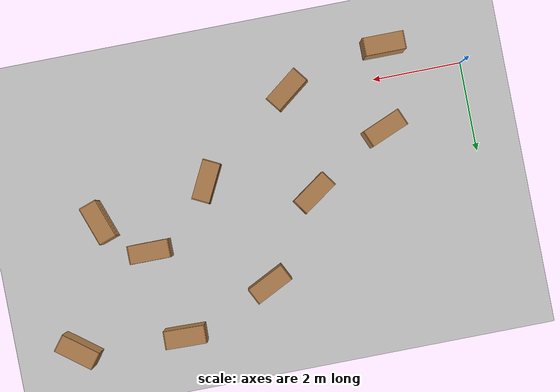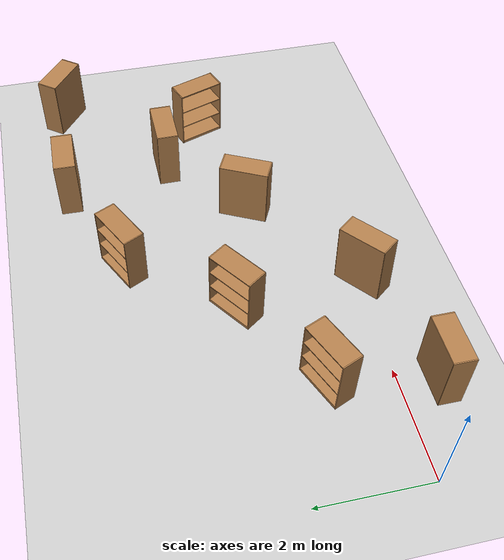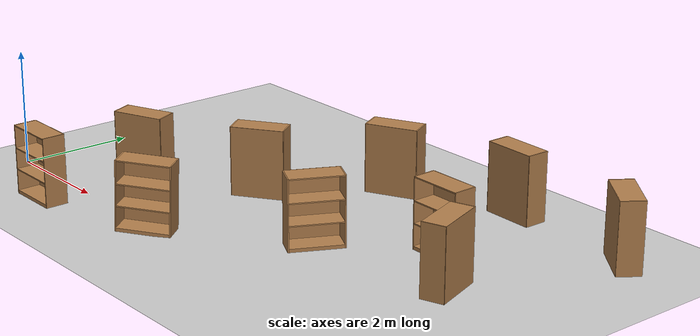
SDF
<sdf version="1.6">
 <world name="default">
  <model name="ground_plane">
   <static>1</static>
   <link name="link">
    <collision name="collision">
     <geometry><plane><normal>0 0 1</normal><size>100 100</size></plane></geometry>
     <surface><friction><ode><mu>100</mu><mu2>50</mu2></ode></friction></surface>
    </collision>
    <visual name="visual">
     <cast_shadows>0</cast_shadows>
     <geometry><plane><normal>0 0 1</normal><size>100 100</size></plane></geometry>
     <material>
      <script><uri>file://media/materials/scripts/gazebo.material</uri><name>Gazebo/Grey</name></script>
     </material>
    </visual>
   </link>
  </model>
  <light name="sun" type="directional">
   <pose>0 0 10 0 -0 0</pose>
   <diffuse>0.8 0.8 0.8 1</diffuse>
   <specular>0.1 0.1 0.1 1</specular>
   <attenuation>
    <range>1000</range>
    <constant>0.9</constant>
    <linear>0.01</linear>
    <quadratic>0.001</quadratic>
   </attenuation>
   <direction>-0.5 0.5 -1</direction>
  </light>
  <gravity>0 0 -9.8</gravity>
  <magnetic_field>6e-06 2.3e-05 -4.2e-05</magnetic_field>
  <atmosphere type="adiabatic"/>
  <physics name="default_physics" default="0" type="ode">
   <max_step_size>0.001</max_step_size>
   <real_time_factor>1</real_time_factor>
   <real_time_update_rate>1000</real_time_update_rate>
  </physics>
  <scene><ambient>0.4 0.4 0.4 1</ambient><background>0.7 0.7 0.7 1</background><shadows>1</shadows></scene>
  <spherical_coordinates>
   <surface_model>EARTH_WGS84</surface_model>
   <latitude_deg>0</latitude_deg>
   <longitude_deg>0</longitude_deg>
   <elevation>0</elevation>
   <heading_deg>0</heading_deg>
  </spherical_coordinates>
  <model name="bookshelf_0">
   <static>1</static>
   <link name="link">
    <inertial><mass>1</mass></inertial>
    <collision name="back">
     <pose>0 0.005 0.6 0 -0 0</pose>
     <geometry><box><size>0.9 0.01 1.2</size></box></geometry>
    </collision>
    <visual name="visual1">
     <pose>0 0.005 0.6 0 -0 0</pose>
     <geometry><box><size>0.9 0.01 1.2</size></box></geometry>
     <material>
      <script><uri>file://media/materials/scripts/gazebo.material</uri><name>Gazebo/Wood</name></script>
     </material>
    </visual>
    <collision name="left_side">
     <pose>0.45 -0.195 0.6 0 -0 0</pose>
     <geometry><box><size>0.02 0.4 1.2</size></box></geometry>
    </collision>
    <visual name="visual2">
     <pose>0.45 -0.195 0.6 0 -0 0</pose>
     <geometry><box><size>0.02 0.4 1.2</size></box></geometry>
     <material>
      <script><uri>file://media/materials/scripts/gazebo.material</uri><name>Gazebo/Wood</name></script>
     </material>
    </visual>
    <collision name="right_side">
     <pose>-0.45 -0.195 0.6 0 -0 0</pose>
     <geometry><box><size>0.02 0.4 1.2</size></box></geometry>
    </collision>
    <visual name="visual3">
     <pose>-0.45 -0.195 0.6 0 -0 0</pose>
     <geometry><box><size>0.02 0.4 1.2</size></box></geometry>
     <material>
      <script><uri>file://media/materials/scripts/gazebo.material</uri><name>Gazebo/Wood</name></script>
     </material>
    </visual>
    <collision name="bottom">
     <pose>0 -0.195 0.03 0 -0 0</pose>
     <geometry><box><size>0.88 0.4 0.06</size></box></geometry>
    </collision>
    <visual name="visual4">
     <pose>0 -0.195 0.03 0 -0 0</pose>
     <geometry><box><size>0.88 0.4 0.06</size></box></geometry>
     <material>
      <script><uri>file://media/materials/scripts/gazebo.material</uri><name>Gazebo/Wood</name></script>
     </material>
    </visual>
    <collision name="top">
     <pose>0 -0.195 1.19 0 -0 0</pose>
     <geometry><box><size>0.88 0.4 0.02</size></box></geometry>
    </collision>
    <visual name="visual5">
     <pose>0 -0.195 1.19 0 -0 0</pose>
     <geometry><box><size>0.88 0.4 0.02</size></box></geometry>
     <material>
      <script><uri>file://media/materials/scripts/gazebo.material</uri><name>Gazebo/Wood</name></script>
     </material>
    </visual>
    <collision name="low_shelf">
     <pose>0 -0.195 0.43 0 -0 0</pose>
     <geometry><box><size>0.88 0.4 0.02</size></box></geometry>
    </collision>
    <visual name="visual6">
     <pose>0 -0.195 0.43 0 -0 0</pose>
     <geometry><box><size>0.88 0.4 0.02</size></box></geometry>
     <material>
      <script><uri>file://media/materials/scripts/gazebo.material</uri><name>Gazebo/Wood</name></script>
     </material>
    </visual>
    <collision name="high_shelf">
     <pose>0 -0.195 0.8 0 -0 0</pose>
     <geometry><box><size>0.88 0.4 0.02</size></box></geometry>
    </collision>
    <visual name="visual7">
     <pose>0 -0.195 0.8 0 -0 0</pose>
     <geometry><box><size>0.88 0.4 0.02</size></box></geometry>
     <material>
      <script><uri>file://media/materials/scripts/gazebo.material</uri><name>Gazebo/Wood</name></script>
     </material>
    </visual>
   </link>
   <pose>1.67672 -0.482988 0 0 -0 0</pose>
  </model>
  <model name="bookshelf">
   <static>1</static>
   <link name="link">
    <inertial><mass>1</mass></inertial>
    <collision name="back">
     <pose>0 0.005 0.6 0 -0 0</pose>
     <geometry><box><size>0.9 0.01 1.2</size></box></geometry>
    </collision>
    <visual name="visual1">
     <pose>0 0.005 0.6 0 -0 0</pose>
     <geometry><box><size>0.9 0.01 1.2</size></box></geometry>
     <material>
      <script><uri>file://media/materials/scripts/gazebo.material</uri><name>Gazebo/Wood</name></script>
     </material>
    </visual>
    <collision name="left_side">
     <pose>0.45 -0.195 0.6 0 -0 0</pose>
     <geometry><box><size>0.02 0.4 1.2</size></box></geometry>
    </collision>
    <visual name="visual2">
     <pose>0.45 -0.195 0.6 0 -0 0</pose>
     <geometry><box><size>0.02 0.4 1.2</size></box></geometry>
     <material>
      <script><uri>file://media/materials/scripts/gazebo.material</uri><name>Gazebo/Wood</name></script>
     </material>
    </visual>
    <collision name="right_side">
     <pose>-0.45 -0.195 0.6 0 -0 0</pose>
     <geometry><box><size>0.02 0.4 1.2</size></box></geometry>
    </collision>
    <visual name="visual3">
     <pose>-0.45 -0.195 0.6 0 -0 0</pose>
     <geometry><box><size>0.02 0.4 1.2</size></box></geometry>
     <material>
      <script><uri>file://media/materials/scripts/gazebo.material</uri><name>Gazebo/Wood</name></script>
     </material>
    </visual>
    <collision name="bottom">
     <pose>0 -0.195 0.03 0 -0 0</pose>
     <geometry><box><size>0.88 0.4 0.06</size></box></geometry>
    </collision>
    <visual name="visual4">
     <pose>0 -0.195 0.03 0 -0 0</pose>
     <geometry><box><size>0.88 0.4 0.06</size></box></geometry>
     <material>
      <script><uri>file://media/materials/scripts/gazebo.material</uri><name>Gazebo/Wood</name></script>
     </material>
    </visual>
    <collision name="top">
     <pose>0 -0.195 1.19 0 -0 0</pose>
     <geometry><box><size>0.88 0.4 0.02</size></box></geometry>
    </collision>
    <visual name="visual5">
     <pose>0 -0.195 1.19 0 -0 0</pose>
     <geometry><box><size>0.88 0.4 0.02</size></box></geometry>
     <material>
      <script><uri>file://media/materials/scripts/gazebo.material</uri><name>Gazebo/Wood</name></script>
     </material>
    </visual>
    <collision name="low_shelf">
     <pose>0 -0.195 0.43 0 -0 0</pose>
     <geometry><box><size>0.88 0.4 0.02</size></box></geometry>
    </collision>
    <visual name="visual6">
     <pose>0 -0.195 0.43 0 -0 0</pose>
     <geometry><box><size>0.88 0.4 0.02</size></box></geometry>
     <material>
      <script><uri>file://media/materials/scripts/gazebo.material</uri><name>Gazebo/Wood</name></script>
     </material>
    </visual>
    <collision name="high_shelf">
     <pose>0 -0.195 0.8 0 -0 0</pose>
     <geometry><box><size>0.88 0.4 0.02</size></box></geometry>
    </collision>
    <visual name="visual7">
     <pose>0 -0.195 0.8 0 -0 0</pose>
     <geometry><box><size>0.88 0.4 0.02</size></box></geometry>
     <material>
      <script><uri>file://media/materials/scripts/gazebo.material</uri><name>Gazebo/Wood</name></script>
     </material>
    </visual>
   </link>
   <pose>2.07681 0.966613 0 0 0 -2.74623</pose>
  </model>
  <model name="bookshelf_1">
   <static>1</static>
   <link name="link">
    <inertial><mass>1</mass></inertial>
    <collision name="back">
     <pose>0 0.005 0.6 0 -0 0</pose>
     <geometry><box><size>0.9 0.01 1.2</size></box></geometry>
    </collision>
    <visual name="visual1">
     <pose>0 0.005 0.6 0 -0 0</pose>
     <geometry><box><size>0.9 0.01 1.2</size></box></geometry>
     <material>
      <script><uri>file://media/materials/scripts/gazebo.material</uri><name>Gazebo/Wood</name></script>
     </material>
    </visual>
    <collision name="left_side">
     <pose>0.45 -0.195 0.6 0 -0 0</pose>
     <geometry><box><size>0.02 0.4 1.2</size></box></geometry>
    </collision>
    <visual name="visual2">
     <pose>0.45 -0.195 0.6 0 -0 0</pose>
     <geometry><box><size>0.02 0.4 1.2</size></box></geometry>
     <material>
      <script><uri>file://media/materials/scripts/gazebo.material</uri><name>Gazebo/Wood</name></script>
     </material>
    </visual>
    <collision name="right_side">
     <pose>-0.45 -0.195 0.6 0 -0 0</pose>
     <geometry><box><size>0.02 0.4 1.2</size></box></geometry>
    </collision>
    <visual name="visual3">
     <pose>-0.45 -0.195 0.6 0 -0 0</pose>
     <geometry><box><size>0.02 0.4 1.2</size></box></geometry>
     <material>
      <script><uri>file://media/materials/scripts/gazebo.material</uri><name>Gazebo/Wood</name></script>
     </material>
    </visual>
    <collision name="bottom">
     <pose>0 -0.195 0.03 0 -0 0</pose>
     <geometry><box><size>0.88 0.4 0.06</size></box></geometry>
    </collision>
    <visual name="visual4">
     <pose>0 -0.195 0.03 0 -0 0</pose>
     <geometry><box><size>0.88 0.4 0.06</size></box></geometry>
     <material>
      <script><uri>file://media/materials/scripts/gazebo.material</uri><name>Gazebo/Wood</name></script>
     </material>
    </visual>
    <collision name="top">
     <pose>0 -0.195 1.19 0 -0 0</pose>
     <geometry><box><size>0.88 0.4 0.02</size></box></geometry>
    </collision>
    <visual name="visual5">
     <pose>0 -0.195 1.19 0 -0 0</pose>
     <geometry><box><size>0.88 0.4 0.02</size></box></geometry>
     <material>
      <script><uri>file://media/materials/scripts/gazebo.material</uri><name>Gazebo/Wood</name></script>
     </material>
    </visual>
    <collision name="low_shelf">
     <pose>0 -0.195 0.43 0 -0 0</pose>
     <geometry><box><size>0.88 0.4 0.02</size></box></geometry>
    </collision>
    <visual name="visual6">
     <pose>0 -0.195 0.43 0 -0 0</pose>
     <geometry><box><size>0.88 0.4 0.02</size></box></geometry>
     <material>
      <script><uri>file://media/materials/scripts/gazebo.material</uri><name>Gazebo/Wood</name></script>
     </material>
    </visual>
    <collision name="high_shelf">
     <pose>0 -0.195 0.8 0 -0 0</pose>
     <geometry><box><size>0.88 0.4 0.02</size></box></geometry>
    </collision>
    <visual name="visual7">
     <pose>0 -0.195 0.8 0 -0 0</pose>
     <geometry><box><size>0.88 0.4 0.02</size></box></geometry>
     <material>
      <script><uri>file://media/materials/scripts/gazebo.material</uri><name>Gazebo/Wood</name></script>
     </material>
    </visual>
   </link>
   <pose>3.80558 0.034787 0 0.008188 0.042642 0.653444</pose>
  </model>
  <model name="bookshelf_2">
   <static>1</static>
   <link name="link">
    <inertial><mass>1</mass></inertial>
    <collision name="back">
     <pose>0 0.005 0.6 0 -0 0</pose>
     <geometry><box><size>0.9 0.01 1.2</size></box></geometry>
    </collision>
    <visual name="visual1">
     <pose>0 0.005 0.6 0 -0 0</pose>
     <geometry><box><size>0.9 0.01 1.2</size></box></geometry>
     <material>
      <script><uri>file://media/materials/scripts/gazebo.material</uri><name>Gazebo/Wood</name></script>
     </material>
    </visual>
    <collision name="left_side">
     <pose>0.45 -0.195 0.6 0 -0 0</pose>
     <geometry><box><size>0.02 0.4 1.2</size></box></geometry>
    </collision>
    <visual name="visual2">
     <pose>0.45 -0.195 0.6 0 -0 0</pose>
     <geometry><box><size>0.02 0.4 1.2</size></box></geometry>
     <material>
      <script><uri>file://media/materials/scripts/gazebo.material</uri><name>Gazebo/Wood</name></script>
     </material>
    </visual>
    <collision name="right_side">
     <pose>-0.45 -0.195 0.6 0 -0 0</pose>
     <geometry><box><size>0.02 0.4 1.2</size></box></geometry>
    </collision>
    <visual name="visual3">
     <pose>-0.45 -0.195 0.6 0 -0 0</pose>
     <geometry><box><size>0.02 0.4 1.2</size></box></geometry>
     <material>
      <script><uri>file://media/materials/scripts/gazebo.material</uri><name>Gazebo/Wood</name></script>
     </material>
    </visual>
    <collision name="bottom">
     <pose>0 -0.195 0.03 0 -0 0</pose>
     <geometry><box><size>0.88 0.4 0.06</size></box></geometry>
    </collision>
    <visual name="visual4">
     <pose>0 -0.195 0.03 0 -0 0</pose>
     <geometry><box><size>0.88 0.4 0.06</size></box></geometry>
     <material>
      <script><uri>file://media/materials/scripts/gazebo.material</uri><name>Gazebo/Wood</name></script>
     </material>
    </visual>
    <collision name="top">
     <pose>0 -0.195 1.19 0 -0 0</pose>
     <geometry><box><size>0.88 0.4 0.02</size></box></geometry>
    </collision>
    <visual name="visual5">
     <pose>0 -0.195 1.19 0 -0 0</pose>
     <geometry><box><size>0.88 0.4 0.02</size></box></geometry>
     <material>
      <script><uri>file://media/materials/scripts/gazebo.material</uri><name>Gazebo/Wood</name></script>
     </material>
    </visual>
    <collision name="low_shelf">
     <pose>0 -0.195 0.43 0 -0 0</pose>
     <geometry><box><size>0.88 0.4 0.02</size></box></geometry>
    </collision>
    <visual name="visual6">
     <pose>0 -0.195 0.43 0 -0 0</pose>
     <geometry><box><size>0.88 0.4 0.02</size></box></geometry>
     <material>
      <script><uri>file://media/materials/scripts/gazebo.material</uri><name>Gazebo/Wood</name></script>
     </material>
    </visual>
    <collision name="high_shelf">
     <pose>0 -0.195 0.8 0 -0 0</pose>
     <geometry><box><size>0.88 0.4 0.02</size></box></geometry>
    </collision>
    <visual name="visual7">
     <pose>0 -0.195 0.8 0 -0 0</pose>
     <geometry><box><size>0.88 0.4 0.02</size></box></geometry>
     <material>
      <script><uri>file://media/materials/scripts/gazebo.material</uri><name>Gazebo/Wood</name></script>
     </material>
    </visual>
   </link>
   <pose>3.91006 2.08465 0 0 0 -2.53344</pose>
  </model>
  <model name="bookshelf_3">
   <static>1</static>
   <link name="link">
    <inertial><mass>1</mass></inertial>
    <collision name="back">
     <pose>0 0.005 0.6 0 -0 0</pose>
     <geometry><box><size>0.9 0.01 1.2</size></box></geometry>
    </collision>
    <visual name="visual1">
     <pose>0 0.005 0.6 0 -0 0</pose>
     <geometry><box><size>0.9 0.01 1.2</size></box></geometry>
     <material>
      <script><uri>file://media/materials/scripts/gazebo.material</uri><name>Gazebo/Wood</name></script>
     </material>
    </visual>
    <collision name="left_side">
     <pose>0.45 -0.195 0.6 0 -0 0</pose>
     <geometry><box><size>0.02 0.4 1.2</size></box></geometry>
    </collision>
    <visual name="visual2">
     <pose>0.45 -0.195 0.6 0 -0 0</pose>
     <geometry><box><size>0.02 0.4 1.2</size></box></geometry>
     <material>
      <script><uri>file://media/materials/scripts/gazebo.material</uri><name>Gazebo/Wood</name></script>
     </material>
    </visual>
    <collision name="right_side">
     <pose>-0.45 -0.195 0.6 0 -0 0</pose>
     <geometry><box><size>0.02 0.4 1.2</size></box></geometry>
    </collision>
    <visual name="visual3">
     <pose>-0.45 -0.195 0.6 0 -0 0</pose>
     <geometry><box><size>0.02 0.4 1.2</size></box></geometry>
     <material>
      <script><uri>file://media/materials/scripts/gazebo.material</uri><name>Gazebo/Wood</name></script>
     </material>
    </visual>
    <collision name="bottom">
     <pose>0 -0.195 0.03 0 -0 0</pose>
     <geometry><box><size>0.88 0.4 0.06</size></box></geometry>
    </collision>
    <visual name="visual4">
     <pose>0 -0.195 0.03 0 -0 0</pose>
     <geometry><box><size>0.88 0.4 0.06</size></box></geometry>
     <material>
      <script><uri>file://media/materials/scripts/gazebo.material</uri><name>Gazebo/Wood</name></script>
     </material>
    </visual>
    <collision name="top">
     <pose>0 -0.195 1.19 0 -0 0</pose>
     <geometry><box><size>0.88 0.4 0.02</size></box></geometry>
    </collision>
    <visual name="visual5">
     <pose>0 -0.195 1.19 0 -0 0</pose>
     <geometry><box><size>0.88 0.4 0.02</size></box></geometry>
     <material>
      <script><uri>file://media/materials/scripts/gazebo.material</uri><name>Gazebo/Wood</name></script>
     </material>
    </visual>
    <collision name="low_shelf">
     <pose>0 -0.195 0.43 0 -0 0</pose>
     <geometry><box><size>0.88 0.4 0.02</size></box></geometry>
    </collision>
    <visual name="visual6">
     <pose>0 -0.195 0.43 0 -0 0</pose>
     <geometry><box><size>0.88 0.4 0.02</size></box></geometry>
     <material>
      <script><uri>file://media/materials/scripts/gazebo.material</uri><name>Gazebo/Wood</name></script>
     </material>
    </visual>
    <collision name="high_shelf">
     <pose>0 -0.195 0.8 0 -0 0</pose>
     <geometry><box><size>0.88 0.4 0.02</size></box></geometry>
    </collision>
    <visual name="visual7">
     <pose>0 -0.195 0.8 0 -0 0</pose>
     <geometry><box><size>0.88 0.4 0.02</size></box></geometry>
     <material>
      <script><uri>file://media/materials/scripts/gazebo.material</uri><name>Gazebo/Wood</name></script>
     </material>
    </visual>
   </link>
   <pose>5.91137 1.62871 0 0 -0 1.10189</pose>
  </model>
  <model name="bookshelf_4">
   <static>1</static>
   <link name="link">
    <inertial><mass>1</mass></inertial>
    <collision name="back">
     <pose>0 0.005 0.6 0 -0 0</pose>
     <geometry><box><size>0.9 0.01 1.2</size></box></geometry>
    </collision>
    <visual name="visual1">
     <pose>0 0.005 0.6 0 -0 0</pose>
     <geometry><box><size>0.9 0.01 1.2</size></box></geometry>
     <material>
      <script><uri>file://media/materials/scripts/gazebo.material</uri><name>Gazebo/Wood</name></script>
     </material>
    </visual>
    <collision name="left_side">
     <pose>0.45 -0.195 0.6 0 -0 0</pose>
     <geometry><box><size>0.02 0.4 1.2</size></box></geometry>
    </collision>
    <visual name="visual2">
     <pose>0.45 -0.195 0.6 0 -0 0</pose>
     <geometry><box><size>0.02 0.4 1.2</size></box></geometry>
     <material>
      <script><uri>file://media/materials/scripts/gazebo.material</uri><name>Gazebo/Wood</name></script>
     </material>
    </visual>
    <collision name="right_side">
     <pose>-0.45 -0.195 0.6 0 -0 0</pose>
     <geometry><box><size>0.02 0.4 1.2</size></box></geometry>
    </collision>
    <visual name="visual3">
     <pose>-0.45 -0.195 0.6 0 -0 0</pose>
     <geometry><box><size>0.02 0.4 1.2</size></box></geometry>
     <material>
      <script><uri>file://media/materials/scripts/gazebo.material</uri><name>Gazebo/Wood</name></script>
     </material>
    </visual>
    <collision name="bottom">
     <pose>0 -0.195 0.03 0 -0 0</pose>
     <geometry><box><size>0.88 0.4 0.06</size></box></geometry>
    </collision>
    <visual name="visual4">
     <pose>0 -0.195 0.03 0 -0 0</pose>
     <geometry><box><size>0.88 0.4 0.06</size></box></geometry>
     <material>
      <script><uri>file://media/materials/scripts/gazebo.material</uri><name>Gazebo/Wood</name></script>
     </material>
    </visual>
    <collision name="top">
     <pose>0 -0.195 1.19 0 -0 0</pose>
     <geometry><box><size>0.88 0.4 0.02</size></box></geometry>
    </collision>
    <visual name="visual5">
     <pose>0 -0.195 1.19 0 -0 0</pose>
     <geometry><box><size>0.88 0.4 0.02</size></box></geometry>
     <material>
      <script><uri>file://media/materials/scripts/gazebo.material</uri><name>Gazebo/Wood</name></script>
     </material>
    </visual>
    <collision name="low_shelf">
     <pose>0 -0.195 0.43 0 -0 0</pose>
     <geometry><box><size>0.88 0.4 0.02</size></box></geometry>
    </collision>
    <visual name="visual6">
     <pose>0 -0.195 0.43 0 -0 0</pose>
     <geometry><box><size>0.88 0.4 0.02</size></box></geometry>
     <material>
      <script><uri>file://media/materials/scripts/gazebo.material</uri><name>Gazebo/Wood</name></script>
     </material>
    </visual>
    <collision name="high_shelf">
     <pose>0 -0.195 0.8 0 -0 0</pose>
     <geometry><box><size>0.88 0.4 0.02</size></box></geometry>
    </collision>
    <visual name="visual7">
     <pose>0 -0.195 0.8 0 -0 0</pose>
     <geometry><box><size>0.88 0.4 0.02</size></box></geometry>
     <material>
      <script><uri>file://media/materials/scripts/gazebo.material</uri><name>Gazebo/Wood</name></script>
     </material>
    </visual>
   </link>
   <pose>5.22288 3.85566 0 0 0 -2.67903</pose>
  </model>
  <model name="bookshelf_5">
   <static>1</static>
   <link name="link">
    <inertial><mass>1</mass></inertial>
    <collision name="back">
     <pose>0 0.005 0.6 0 -0 0</pose>
     <geometry><box><size>0.9 0.01 1.2</size></box></geometry>
    </collision>
    <visual name="visual1">
     <pose>0 0.005 0.6 0 -0 0</pose>
     <geometry><box><size>0.9 0.01 1.2</size></box></geometry>
     <material>
      <script><uri>file://media/materials/scripts/gazebo.material</uri><name>Gazebo/Wood</name></script>
     </material>
    </visual>
    <collision name="left_side">
     <pose>0.45 -0.195 0.6 0 -0 0</pose>
     <geometry><box><size>0.02 0.4 1.2</size></box></geometry>
    </collision>
    <visual name="visual2">
     <pose>0.45 -0.195 0.6 0 -0 0</pose>
     <geometry><box><size>0.02 0.4 1.2</size></box></geometry>
     <material>
      <script><uri>file://media/materials/scripts/gazebo.material</uri><name>Gazebo/Wood</name></script>
     </material>
    </visual>
    <collision name="right_side">
     <pose>-0.45 -0.195 0.6 0 -0 0</pose>
     <geometry><box><size>0.02 0.4 1.2</size></box></geometry>
    </collision>
    <visual name="visual3">
     <pose>-0.45 -0.195 0.6 0 -0 0</pose>
     <geometry><box><size>0.02 0.4 1.2</size></box></geometry>
     <material>
      <script><uri>file://media/materials/scripts/gazebo.material</uri><name>Gazebo/Wood</name></script>
     </material>
    </visual>
    <collision name="bottom">
     <pose>0 -0.195 0.03 0 -0 0</pose>
     <geometry><box><size>0.88 0.4 0.06</size></box></geometry>
    </collision>
    <visual name="visual4">
     <pose>0 -0.195 0.03 0 -0 0</pose>
     <geometry><box><size>0.88 0.4 0.06</size></box></geometry>
     <material>
      <script><uri>file://media/materials/scripts/gazebo.material</uri><name>Gazebo/Wood</name></script>
     </material>
    </visual>
    <collision name="top">
     <pose>0 -0.195 1.19 0 -0 0</pose>
     <geometry><box><size>0.88 0.4 0.02</size></box></geometry>
    </collision>
    <visual name="visual5">
     <pose>0 -0.195 1.19 0 -0 0</pose>
     <geometry><box><size>0.88 0.4 0.02</size></box></geometry>
     <material>
      <script><uri>file://media/materials/scripts/gazebo.material</uri><name>Gazebo/Wood</name></script>
     </material>
    </visual>
    <collision name="low_shelf">
     <pose>0 -0.195 0.43 0 -0 0</pose>
     <geometry><box><size>0.88 0.4 0.02</size></box></geometry>
    </collision>
    <visual name="visual6">
     <pose>0 -0.195 0.43 0 -0 0</pose>
     <geometry><box><size>0.88 0.4 0.02</size></box></geometry>
     <material>
      <script><uri>file://media/materials/scripts/gazebo.material</uri><name>Gazebo/Wood</name></script>
     </material>
    </visual>
    <collision name="high_shelf">
     <pose>0 -0.195 0.8 0 -0 0</pose>
     <geometry><box><size>0.88 0.4 0.02</size></box></geometry>
    </collision>
    <visual name="visual7">
     <pose>0 -0.195 0.8 0 -0 0</pose>
     <geometry><box><size>0.88 0.4 0.02</size></box></geometry>
     <material>
      <script><uri>file://media/materials/scripts/gazebo.material</uri><name>Gazebo/Wood</name></script>
     </material>
    </visual>
   </link>
   <pose>7.18251 4.61674 0 0 -0 3.11717</pose>
  </model>
  <model name="bookshelf_6">
   <static>1</static>
   <link name="link">
    <inertial><mass>1</mass></inertial>
    <collision name="back">
     <pose>0 0.005 0.6 0 -0 0</pose>
     <geometry><box><size>0.9 0.01 1.2</size></box></geometry>
    </collision>
    <visual name="visual1">
     <pose>0 0.005 0.6 0 -0 0</pose>
     <geometry><box><size>0.9 0.01 1.2</size></box></geometry>
     <material>
      <script><uri>file://media/materials/scripts/gazebo.material</uri><name>Gazebo/Wood</name></script>
     </material>
    </visual>
    <collision name="left_side">
     <pose>0.45 -0.195 0.6 0 -0 0</pose>
     <geometry><box><size>0.02 0.4 1.2</size></box></geometry>
    </collision>
    <visual name="visual2">
     <pose>0.45 -0.195 0.6 0 -0 0</pose>
     <geometry><box><size>0.02 0.4 1.2</size></box></geometry>
     <material>
      <script><uri>file://media/materials/scripts/gazebo.material</uri><name>Gazebo/Wood</name></script>
     </material>
    </visual>
    <collision name="right_side">
     <pose>-0.45 -0.195 0.6 0 -0 0</pose>
     <geometry><box><size>0.02 0.4 1.2</size></box></geometry>
    </collision>
    <visual name="visual3">
     <pose>-0.45 -0.195 0.6 0 -0 0</pose>
     <geometry><box><size>0.02 0.4 1.2</size></box></geometry>
     <material>
      <script><uri>file://media/materials/scripts/gazebo.material</uri><name>Gazebo/Wood</name></script>
     </material>
    </visual>
    <collision name="bottom">
     <pose>0 -0.195 0.03 0 -0 0</pose>
     <geometry><box><size>0.88 0.4 0.06</size></box></geometry>
    </collision>
    <visual name="visual4">
     <pose>0 -0.195 0.03 0 -0 0</pose>
     <geometry><box><size>0.88 0.4 0.06</size></box></geometry>
     <material>
      <script><uri>file://media/materials/scripts/gazebo.material</uri><name>Gazebo/Wood</name></script>
     </material>
    </visual>
    <collision name="top">
     <pose>0 -0.195 1.19 0 -0 0</pose>
     <geometry><box><size>0.88 0.4 0.02</size></box></geometry>
    </collision>
    <visual name="visual5">
     <pose>0 -0.195 1.19 0 -0 0</pose>
     <geometry><box><size>0.88 0.4 0.02</size></box></geometry>
     <material>
      <script><uri>file://media/materials/scripts/gazebo.material</uri><name>Gazebo/Wood</name></script>
     </material>
    </visual>
    <collision name="low_shelf">
     <pose>0 -0.195 0.43 0 -0 0</pose>
     <geometry><box><size>0.88 0.4 0.02</size></box></geometry>
    </collision>
    <visual name="visual6">
     <pose>0 -0.195 0.43 0 -0 0</pose>
     <geometry><box><size>0.88 0.4 0.02</size></box></geometry>
     <material>
      <script><uri>file://media/materials/scripts/gazebo.material</uri><name>Gazebo/Wood</name></script>
     </material>
    </visual>
    <collision name="high_shelf">
     <pose>0 -0.195 0.8 0 -0 0</pose>
     <geometry><box><size>0.88 0.4 0.02</size></box></geometry>
    </collision>
    <visual name="visual7">
     <pose>0 -0.195 0.8 0 -0 0</pose>
     <geometry><box><size>0.88 0.4 0.02</size></box></geometry>
     <material>
      <script><uri>file://media/materials/scripts/gazebo.material</uri><name>Gazebo/Wood</name></script>
     </material>
    </visual>
   </link>
   <pose>7.60613 3.01344 0 0 -0 0</pose>
  </model>
  <model name="bookshelf_7">
   <static>1</static>
   <link name="link">
    <inertial><mass>1</mass></inertial>
    <collision name="back">
     <pose>0 0.005 0.6 0 -0 0</pose>
     <geometry><box><size>0.9 0.01 1.2</size></box></geometry>
    </collision>
    <visual name="visual1">
     <pose>0 0.005 0.6 0 -0 0</pose>
     <geometry><box><size>0.9 0.01 1.2</size></box></geometry>
     <material>
      <script><uri>file://media/materials/scripts/gazebo.material</uri><name>Gazebo/Wood</name></script>
     </material>
    </visual>
    <collision name="left_side">
     <pose>0.45 -0.195 0.6 0 -0 0</pose>
     <geometry><box><size>0.02 0.4 1.2</size></box></geometry>
    </collision>
    <visual name="visual2">
     <pose>0.45 -0.195 0.6 0 -0 0</pose>
     <geometry><box><size>0.02 0.4 1.2</size></box></geometry>
     <material>
      <script><uri>file://media/materials/scripts/gazebo.material</uri><name>Gazebo/Wood</name></script>
     </material>
    </visual>
    <collision name="right_side">
     <pose>-0.45 -0.195 0.6 0 -0 0</pose>
     <geometry><box><size>0.02 0.4 1.2</size></box></geometry>
    </collision>
    <visual name="visual3">
     <pose>-0.45 -0.195 0.6 0 -0 0</pose>
     <geometry><box><size>0.02 0.4 1.2</size></box></geometry>
     <material>
      <script><uri>file://media/materials/scripts/gazebo.material</uri><name>Gazebo/Wood</name></script>
     </material>
    </visual>
    <collision name="bottom">
     <pose>0 -0.195 0.03 0 -0 0</pose>
     <geometry><box><size>0.88 0.4 0.06</size></box></geometry>
    </collision>
    <visual name="visual4">
     <pose>0 -0.195 0.03 0 -0 0</pose>
     <geometry><box><size>0.88 0.4 0.06</size></box></geometry>
     <material>
      <script><uri>file://media/materials/scripts/gazebo.material</uri><name>Gazebo/Wood</name></script>
     </material>
    </visual>
    <collision name="top">
     <pose>0 -0.195 1.19 0 -0 0</pose>
     <geometry><box><size>0.88 0.4 0.02</size></box></geometry>
    </collision>
    <visual name="visual5">
     <pose>0 -0.195 1.19 0 -0 0</pose>
     <geometry><box><size>0.88 0.4 0.02</size></box></geometry>
     <material>
      <script><uri>file://media/materials/scripts/gazebo.material</uri><name>Gazebo/Wood</name></script>
     </material>
    </visual>
    <collision name="low_shelf">
     <pose>0 -0.195 0.43 0 -0 0</pose>
     <geometry><box><size>0.88 0.4 0.02</size></box></geometry>
    </collision>
    <visual name="visual6">
     <pose>0 -0.195 0.43 0 -0 0</pose>
     <geometry><box><size>0.88 0.4 0.02</size></box></geometry>
     <material>
      <script><uri>file://media/materials/scripts/gazebo.material</uri><name>Gazebo/Wood</name></script>
     </material>
    </visual>
    <collision name="high_shelf">
     <pose>0 -0.195 0.8 0 -0 0</pose>
     <geometry><box><size>0.88 0.4 0.02</size></box></geometry>
    </collision>
    <visual name="visual7">
     <pose>0 -0.195 0.8 0 -0 0</pose>
     <geometry><box><size>0.88 0.4 0.02</size></box></geometry>
     <material>
      <script><uri>file://media/materials/scripts/gazebo.material</uri><name>Gazebo/Wood</name></script>
     </material>
    </visual>
   </link>
   <pose>8.77275 2.04174 0 0 0 -1.23454</pose>
  </model>
  <model name="bookshelf_8">
   <static>1</static>
   <link name="link">
    <inertial><mass>1</mass></inertial>
    <collision name="back">
     <pose>0 0.005 0.6 0 -0 0</pose>
     <geometry><box><size>0.9 0.01 1.2</size></box></geometry>
    </collision>
    <visual name="visual1">
     <pose>0 0.005 0.6 0 -0 0</pose>
     <geometry><box><size>0.9 0.01 1.2</size></box></geometry>
     <material>
      <script><uri>file://media/materials/scripts/gazebo.material</uri><name>Gazebo/Wood</name></script>
     </material>
    </visual>
    <collision name="left_side">
     <pose>0.45 -0.195 0.6 0 -0 0</pose>
     <geometry><box><size>0.02 0.4 1.2</size></box></geometry>
    </collision>
    <visual name="visual2">
     <pose>0.45 -0.195 0.6 0 -0 0</pose>
     <geometry><box><size>0.02 0.4 1.2</size></box></geometry>
     <material>
      <script><uri>file://media/materials/scripts/gazebo.material</uri><name>Gazebo/Wood</name></script>
     </material>
    </visual>
    <collision name="right_side">
     <pose>-0.45 -0.195 0.6 0 -0 0</pose>
     <geometry><box><size>0.02 0.4 1.2</size></box></geometry>
    </collision>
    <visual name="visual3">
     <pose>-0.45 -0.195 0.6 0 -0 0</pose>
     <geometry><box><size>0.02 0.4 1.2</size></box></geometry>
     <material>
      <script><uri>file://media/materials/scripts/gazebo.material</uri><name>Gazebo/Wood</name></script>
     </material>
    </visual>
    <collision name="bottom">
     <pose>0 -0.195 0.03 0 -0 0</pose>
     <geometry><box><size>0.88 0.4 0.06</size></box></geometry>
    </collision>
    <visual name="visual4">
     <pose>0 -0.195 0.03 0 -0 0</pose>
     <geometry><box><size>0.88 0.4 0.06</size></box></geometry>
     <material>
      <script><uri>file://media/materials/scripts/gazebo.material</uri><name>Gazebo/Wood</name></script>
     </material>
    </visual>
    <collision name="top">
     <pose>0 -0.195 1.19 0 -0 0</pose>
     <geometry><box><size>0.88 0.4 0.02</size></box></geometry>
    </collision>
    <visual name="visual5">
     <pose>0 -0.195 1.19 0 -0 0</pose>
     <geometry><box><size>0.88 0.4 0.02</size></box></geometry>
     <material>
      <script><uri>file://media/materials/scripts/gazebo.material</uri><name>Gazebo/Wood</name></script>
     </material>
    </visual>
    <collision name="low_shelf">
     <pose>0 -0.195 0.43 0 -0 0</pose>
     <geometry><box><size>0.88 0.4 0.02</size></box></geometry>
    </collision>
    <visual name="visual6">
     <pose>0 -0.195 0.43 0 -0 0</pose>
     <geometry><box><size>0.88 0.4 0.02</size></box></geometry>
     <material>
      <script><uri>file://media/materials/scripts/gazebo.material</uri><name>Gazebo/Wood</name></script>
     </material>
    </visual>
    <collision name="high_shelf">
     <pose>0 -0.195 0.8 0 -0 0</pose>
     <geometry><box><size>0.88 0.4 0.02</size></box></geometry>
    </collision>
    <visual name="visual7">
     <pose>0 -0.195 0.8 0 -0 0</pose>
     <geometry><box><size>0.88 0.4 0.02</size></box></geometry>
     <material>
      <script><uri>file://media/materials/scripts/gazebo.material</uri><name>Gazebo/Wood</name></script>
     </material>
    </visual>
   </link>
   <pose>9.45408 4.52331 0 0 -0 2.48835</pose>
  </model>
 </world>
</sdf>
